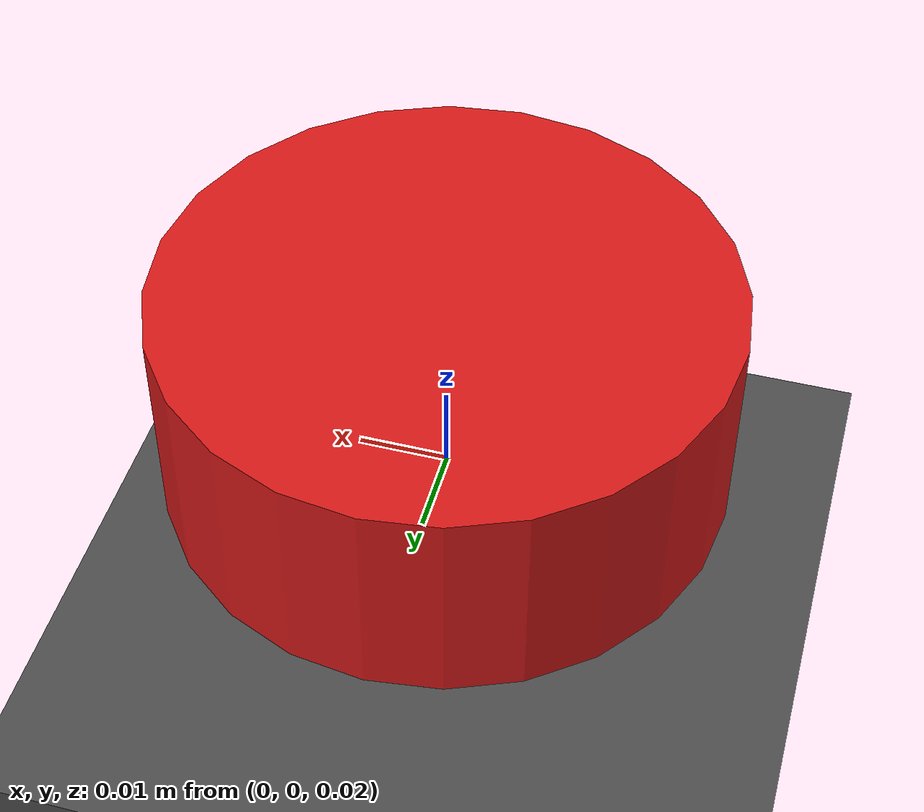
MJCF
<mujoco model="sally_scene">
    <compiler angle="radian" meshdir="assets" autolimits="true"/>
    <option gravity="0 0 -9.81" integrator="implicit"/>

    <visual>
        <headlight diffuse="0.8 0.8 0.8" ambient="0.4 0.4 0.4" specular="0.2 0.2 0.2"/>
        <map fogstart="1.0" fogend="3.0" znear="0.01" zfar="10.0" force="0.1"/>
        <rgba haze="0.75 0.85 1.0 1"/>   <!-- blue haze -->
    </visual>

    <asset>
        <!-- Bright gradient sky background -->
        <texture name="skybox" type="skybox" builtin="gradient"
                 rgb1="0.6 0.8 1.0" rgb2="1.0 1.0 1.0"
                 width="512" height="3072"/>
    </asset>

    <!-- For consistent viewer centering -->
    <statistic center="0 0 0.3" extent="1.0"/>

    <!-- Include the magnet + flat plate environment -->
    <include file="flat_plate_pull.xml" mujoco_include="true"/>

</mujoco>

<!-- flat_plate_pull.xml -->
<mujoco model="magnet_plate_test">
  <compiler angle="radian" autolimits="true" />

  <asset>
    <texture name="grid" type="2d" builtin="checker" width="512" height="512"
            rgb1="0.9 0.9 0.9" rgb2="0.7 0.7 0.7"/>
    <material name="grid" texture="grid" texrepeat="5 5" reflectance="0.2"/>
    <texture name="skybox" type="skybox" builtin="gradient"
            rgb1="0.8 0.85 0.9" rgb2="0.95 0.95 0.95" width="512" height="512"/>
  </asset>

  <option timestep="0.001" integrator="implicit" gravity="0 0 -9.81" />

  <default>
    <geom condim="6" contype="1" conaffinity="1" friction="0.8 0.1 0.1" rgba="0.7 0.7 0.7 1" />
  </default>

  <worldbody>
    <geom name="floor" type="plane" size="1 1 0.01" material="grid"
        pos="0 0 -0.015" contype="0" conaffinity="0"/>

    <!-- Plate lies flat: top surface at z=0 -->
    <body name="plate" pos="0 0 0">
      <geom name="plate_geom" type="box" pos="0 0 -0.005" size="0.25 0.25 0.005" rgba="0.3 0.3 0.3 1" />
    </body>

    <!-- Slider rail: fixed to world, constrains magnet to Z-axis only -->
    <body name="slider_rail" pos="0 0 0">
      <!-- Magnet body slides along Z only via slide joint -->
      <body name="magnet" pos="0 0 0.0325">
        <joint name="pull_joint" type="slide" axis="0 0 1" range="-0.01 0.5" />

        <!-- Main magnet geom: radius=31.5mm, half-height=12.5mm (25mm total height) -->
        <geom name="magnet_cyl" type="cylinder" size="0.0315 0.0125" rgba="0.85 0.1 0.1 1" density="7500" />

        <!-- Embedded sampling spheres (3 rings x 8 points = 24). Non-colliding. -->
        <!-- Ring radius = 0.0285 m; z offsets relative to magnet body center -->
        <!-- Bottom ring (z = -0.0105): closest to plate -->
        <geom type="sphere" size="0.002" pos="0.028500 0.000000 -0.010500" rgba="0 0 1 1" contype="0" conaffinity="0" mass="1e-6" />
        <geom type="sphere" size="0.002" pos="0.020152 0.020152 -0.010500" rgba="0 0 1 1" contype="0" conaffinity="0" mass="1e-6" />
        <geom type="sphere" size="0.002" pos="0.000000 0.028500 -0.010500" rgba="0 0 1 1" contype="0" conaffinity="0" mass="1e-6" />
        <geom type="sphere" size="0.002" pos="-0.020152 0.020152 -0.010500" rgba="0 0 1 1" contype="0" conaffinity="0" mass="1e-6" />
        <geom type="sphere" size="0.002" pos="-0.028500 0.000000 -0.010500" rgba="0 0 1 1" contype="0" conaffinity="0" mass="1e-6" />
        <geom type="sphere" size="0.002" pos="-0.020152 -0.020152 -0.010500" rgba="0 0 1 1" contype="0" conaffinity="0" mass="1e-6" />
        <geom type="sphere" size="0.002" pos="0.000000 -0.028500 -0.010500" rgba="0 0 1 1" contype="0" conaffinity="0" mass="1e-6" />
        <geom type="sphere" size="0.002" pos="0.020152 -0.020152 -0.010500" rgba="0 0 1 1" contype="0" conaffinity="0" mass="1e-6" />

        <!-- Middle ring (z = 0.0) -->
        <geom type="sphere" size="0.002" pos="0.028500 0.000000 0.000000" rgba="0 0 1 1" contype="0" conaffinity="0" mass="1e-6" />
        <geom type="sphere" size="0.002" pos="0.020152 0.020152 0.000000" rgba="0 0 1 1" contype="0" conaffinity="0" mass="1e-6" />
        <geom type="sphere" size="0.002" pos="0.000000 0.028500 0.000000" rgba="0 0 1 1" contype="0" conaffinity="0" mass="1e-6" />
        <geom type="sphere" size="0.002" pos="-0.020152 0.020152 0.000000" rgba="0 0 1 1" contype="0" conaffinity="0" mass="1e-6" />
        <geom type="sphere" size="0.002" pos="-0.028500 0.000000 0.000000" rgba="0 0 1 1" contype="0" conaffinity="0" mass="1e-6" />
        <geom type="sphere" size="0.002" pos="-0.020152 -0.020152 0.000000" rgba="0 0 1 1" contype="0" conaffinity="0" mass="1e-6" />
        <geom type="sphere" size="0.002" pos="0.000000 -0.028500 0.000000" rgba="0 0 1 1" contype="0" conaffinity="0" mass="1e-6" />
        <geom type="sphere" size="0.002" pos="0.020152 -0.020152 0.000000" rgba="0 0 1 1" contype="0" conaffinity="0" mass="1e-6" />

        <!-- Top ring (z = +0.0105) -->
        <geom type="sphere" size="0.002" pos="0.028500 0.000000 0.010500" rgba="0 0 1 1" contype="0" conaffinity="0" mass="1e-6" />
        <geom type="sphere" size="0.002" pos="0.020152 0.020152 0.010500" rgba="0 0 1 1" contype="0" conaffinity="0" mass="1e-6" />
        <geom type="sphere" size="0.002" pos="0.000000 0.028500 0.010500" rgba="0 0 1 1" contype="0" conaffinity="0" mass="1e-6" />
        <geom type="sphere" size="0.002" pos="-0.020152 0.020152 0.010500" rgba="0 0 1 1" contype="0" conaffinity="0" mass="1e-6" />
        <geom type="sphere" size="0.002" pos="-0.028500 0.000000 0.010500" rgba="0 0 1 1" contype="0" conaffinity="0" mass="1e-6" />
        <geom type="sphere" size="0.002" pos="-0.020152 -0.020152 0.010500" rgba="0 0 1 1" contype="0" conaffinity="0" mass="1e-6" />
        <geom type="sphere" size="0.002" pos="0.000000 -0.028500 0.010500" rgba="0 0 1 1" contype="0" conaffinity="0" mass="1e-6" />
        <geom type="sphere" size="0.002" pos="0.020152 -0.020152 0.010500" rgba="0 0 1 1" contype="0" conaffinity="0" mass="1e-6" />
      </body>
    </body>
  </worldbody>
</mujoco>
